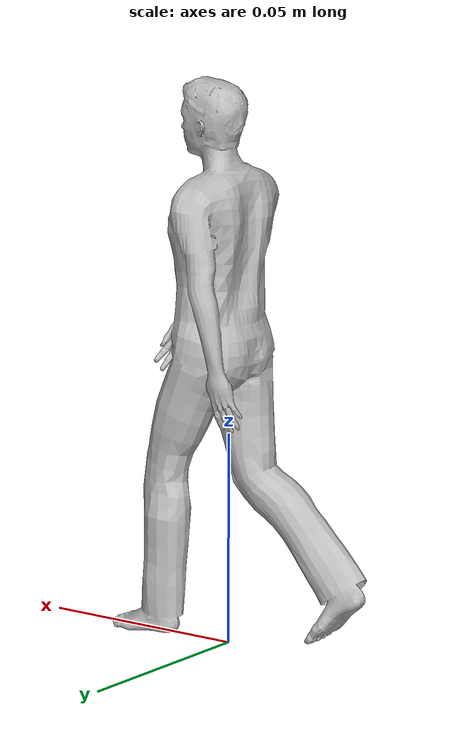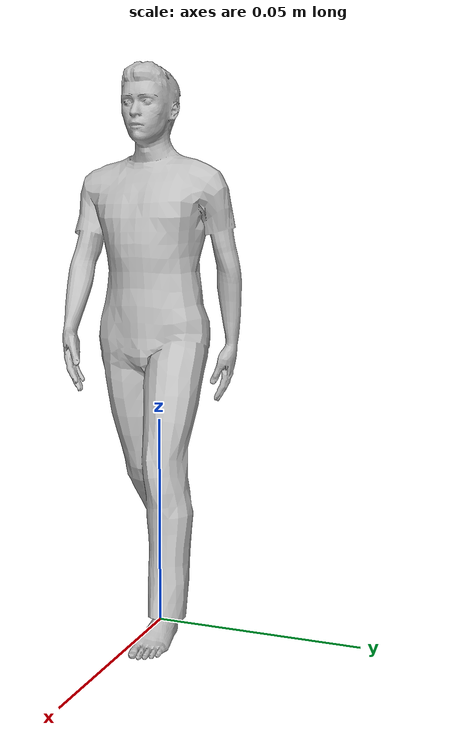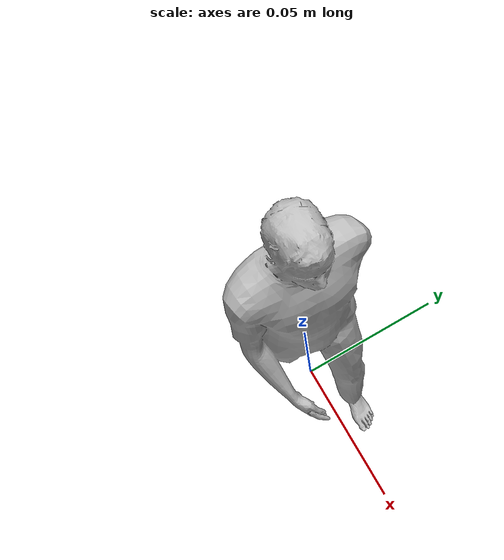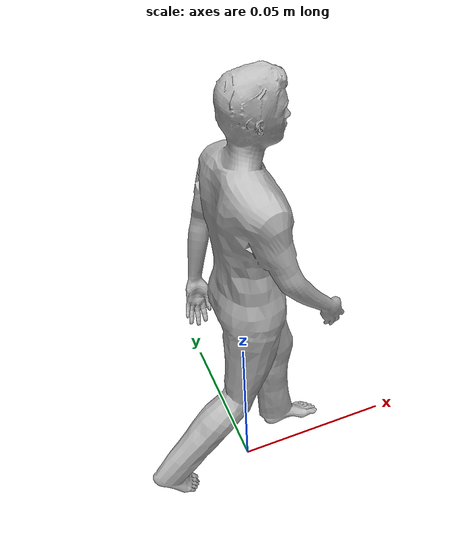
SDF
<?xml version="1.0"?>
<sdf version="1.8">
    <model name="pedestrian_npc">
        <static>false</static>
        <link name="pedestrian_npc_link">
            <inertial>
                <mass>1000</mass>
                <inertia>
                    <ixx>0.433</ixx>
                    <ixy>0.0</ixy>
                    <ixz>0.0</ixz>
                    <iyy>0.433</iyy>
                    <iyz>0.0</iyz>
                    <izz>0.433</izz>
                </inertia>
            </inertial>
            <collision name="collision">
                <pose>0 0 0.06545 0 0 1.57</pose>
                <geometry>
                    <box>
                        <size>0.0385 0.0616 0.1309</size>
                    </box>
                </geometry>
            </collision>

            <visual name="visual">
                <pose>0 0 0 0 0 1.57</pose>
                <geometry>
                    <mesh>
                        <uri>assets/walking.dae</uri>
                        <scale>0.07 0.07 0.07</scale>
                    </mesh>
                </geometry>
            </visual>
        </link>
        <!-- Set up to recieve cmd_vel messages -->
        <plugin filename="gz-sim-velocity-control-system"
            name="gz::sim::systems::VelocityControl">
            <link_name>pedestrian_npc_link</link_name>
        </plugin>

        <plugin filename="gz-sim-pose-publisher-system"
            name="gz::sim::systems::PosePublisher">

            <publish_model_pose>true</publish_model_pose>
            <publish_link_pose>false</publish_link_pose>
            <publish_sensor_pose>false</publish_sensor_pose>
            <publish_collision_pose>false</publish_collision_pose>
            <publish_visual_pose>false</publish_visual_pose>

            <update_frequency>20</update_frequency>

            <use_pose_vector_msg>false</use_pose_vector_msg>

        </plugin>
    </model>
</sdf>
